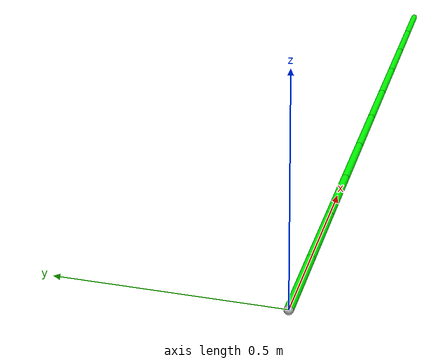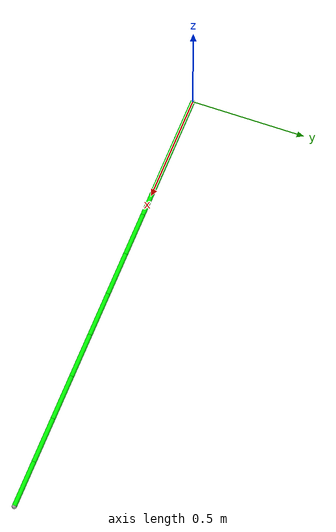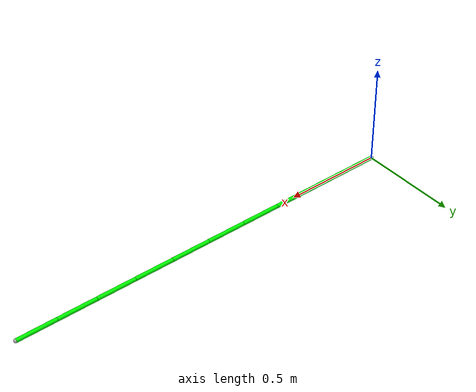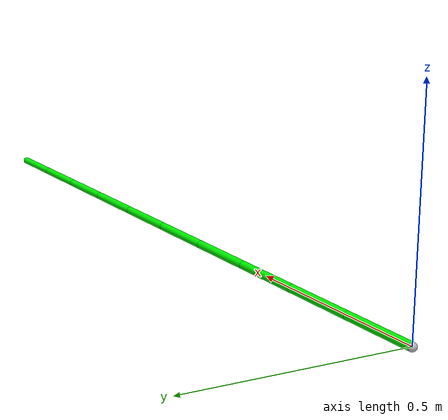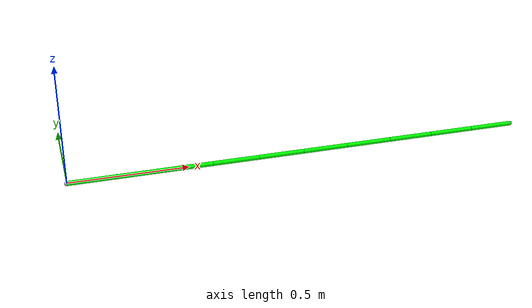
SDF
<?xml version="1.0" encoding="UTF-8"?>
<sdf version='1.9'>
  <model name='rope'>
    <enable_wind>true</enable_wind>
    <static>false</static>
    <link name='begin_link'>
      <pose>0 0 0 0 0 0</pose>
      <inertial>
        <mass>0.001</mass>
        <inertia>
          <ixx>4.000000000000001e-08</ixx>
          <iyy>4.000000000000001e-08</iyy>
          <izz>4.000000000000001e-08</izz>
        </inertia>
      </inertial>
       <collision name='begin_link_collision'>
        <geometry>
          <sphere>
            <radius>0.01</radius>
          </sphere>
        </geometry>
      </collision>
      <visual name='begin_link_visual'>
        <geometry>
          <sphere>
            <radius>0.01</radius>
          </sphere>
        </geometry>
      </visual>
    </link>
    <link name='link_0'>
      <pose>0.1 0 0 0 1.570796326794896558 0</pose>
      <inertial>
        <mass>0.001</mass>
        <inertia>
          <ixx>0.0003358333333333334</ixx>
          <iyy>0.0003358333333333334</iyy>
          <izz>5e-06</izz>
        </inertia>
      </inertial>
       <collision name='link_0_collision'>
        <geometry>
          <cylinder>
            <length>0.2</length>
            <radius>0.01</radius>
          </cylinder>
        </geometry>
      </collision>
      <visual name='link_0_vis'>
        <geometry>
          <cylinder>
            <length>0.2</length>
            <radius>0.01</radius>
          </cylinder>
        </geometry>
        <material>
          <ambient>0 1 0 1</ambient> <!-- green -->
          <diffuse>0 1 0 1</diffuse>
          <specular>0 1 0 1</specular>
        </material>
      </visual>
      <velocity_decay>
        <linear>0.1</linear>
        <angular>0.1</angular>
      </velocity_decay>

    </link>
    <joint name='begin_joint_2' type='universal'>
      <pose relative_to='begin_link'/>
      <child>link_0</child>
      <parent>begin_link</parent>
      <axis>
        <xyz>1 0 0</xyz>
      </axis>
      <axis2>
        <xyz>0 1 0</xyz>
      </axis2>
    </joint>

    <link name='link_1'>
      <pose>0.30000000000000004 0 0 0 1.570796326794896558 0</pose>
      <inertial>
        <mass>0.001</mass>
        <inertia>
          <ixx>0.0003358333333333334</ixx>
          <iyy>0.0003358333333333334</iyy>
          <izz>5e-06</izz>
        </inertia>
      </inertial>
       <collision name='link_1_collision'>
        <geometry>
          <cylinder>
            <length>0.2</length>
            <radius>0.01</radius>
          </cylinder>
        </geometry>
      </collision>
      <visual name='link_1_vis'>
        <geometry>
          <cylinder>
            <length>0.2</length>
            <radius>0.01</radius>
          </cylinder>
        </geometry>
        <material>
          <ambient>0 1 0 1</ambient> <!-- green -->
          <diffuse>0 1 0 1</diffuse>
          <specular>0 1 0 1</specular>
        </material>
      </visual>
      <velocity_decay>
        <linear>0.1</linear>
        <angular>0.1</angular>
      </velocity_decay>

    </link>
    <joint name='joint_1_2' type='universal'>
      <pose relative_to='link_0'>0 0 0.1 0 0 0</pose>
      <child>link_1</child>
      <parent>link_0</parent>
      <axis>
        <xyz expressed_in='link_0'>1 0 0</xyz>
        <limit>
          <lower>-3.141592653589793</lower>
          <upper>3.141592653589793</upper>
          <effort>100</effort>
          <velocity>10</velocity>
        </limit>
        <dynamics>
          <damping>0.1</damping>
        </dynamics>
      </axis>
      <axis2>
        <xyz expressed_in='link_0'>0 1 0</xyz>
        <limit>
          <lower>-3.141592653589793</lower>
          <upper>3.141592653589793</upper>
          <effort>100</effort>
          <velocity>10</velocity>
        </limit>
        <dynamics>
          <damping>0.1</damping>
        </dynamics>
      </axis2>
    </joint>
    <link name='link_2'>
      <pose>0.5 0 0 0 1.570796326794896558 0</pose>
      <inertial>
        <mass>0.001</mass>
        <inertia>
          <ixx>0.0003358333333333334</ixx>
          <iyy>0.0003358333333333334</iyy>
          <izz>5e-06</izz>
        </inertia>
      </inertial>
       <collision name='link_2_collision'>
        <geometry>
          <cylinder>
            <length>0.2</length>
            <radius>0.01</radius>
          </cylinder>
        </geometry>
      </collision>
      <visual name='link_2_vis'>
        <geometry>
          <cylinder>
            <length>0.2</length>
            <radius>0.01</radius>
          </cylinder>
        </geometry>
        <material>
          <ambient>0 1 0 1</ambient> <!-- green -->
          <diffuse>0 1 0 1</diffuse>
          <specular>0 1 0 1</specular>
        </material>
      </visual>
      <velocity_decay>
        <linear>0.1</linear>
        <angular>0.1</angular>
      </velocity_decay>

    </link>
    <joint name='joint_2_2' type='universal'>
      <pose relative_to='link_1'>0 0 0.1 0 0 0</pose>
      <child>link_2</child>
      <parent>link_1</parent>
      <axis>
        <xyz expressed_in='link_1'>1 0 0</xyz>
        <limit>
          <lower>-3.141592653589793</lower>
          <upper>3.141592653589793</upper>
          <effort>100</effort>
          <velocity>10</velocity>
        </limit>
        <dynamics>
          <damping>0.1</damping>
        </dynamics>
      </axis>
      <axis2>
        <xyz expressed_in='link_1'>0 1 0</xyz>
        <limit>
          <lower>-3.141592653589793</lower>
          <upper>3.141592653589793</upper>
          <effort>100</effort>
          <velocity>10</velocity>
        </limit>
        <dynamics>
          <damping>0.1</damping>
        </dynamics>
      </axis2>
    </joint>
    <link name='link_3'>
      <pose>0.7000000000000001 0 0 0 1.570796326794896558 0</pose>
      <inertial>
        <mass>0.001</mass>
        <inertia>
          <ixx>0.0003358333333333334</ixx>
          <iyy>0.0003358333333333334</iyy>
          <izz>5e-06</izz>
        </inertia>
      </inertial>
       <collision name='link_3_collision'>
        <geometry>
          <cylinder>
            <length>0.2</length>
            <radius>0.01</radius>
          </cylinder>
        </geometry>
      </collision>
      <visual name='link_3_vis'>
        <geometry>
          <cylinder>
            <length>0.2</length>
            <radius>0.01</radius>
          </cylinder>
        </geometry>
        <material>
          <ambient>0 1 0 1</ambient> <!-- green -->
          <diffuse>0 1 0 1</diffuse>
          <specular>0 1 0 1</specular>
        </material>
      </visual>
      <velocity_decay>
        <linear>0.1</linear>
        <angular>0.1</angular>
      </velocity_decay>

    </link>
    <joint name='joint_3_2' type='universal'>
      <pose relative_to='link_2'>0 0 0.1 0 0 0</pose>
      <child>link_3</child>
      <parent>link_2</parent>
      <axis>
        <xyz expressed_in='link_2'>1 0 0</xyz>
        <limit>
          <lower>-3.141592653589793</lower>
          <upper>3.141592653589793</upper>
          <effort>100</effort>
          <velocity>10</velocity>
        </limit>
        <dynamics>
          <damping>0.1</damping>
        </dynamics>
      </axis>
      <axis2>
        <xyz expressed_in='link_2'>0 1 0</xyz>
        <limit>
          <lower>-3.141592653589793</lower>
          <upper>3.141592653589793</upper>
          <effort>100</effort>
          <velocity>10</velocity>
        </limit>
        <dynamics>
          <damping>0.1</damping>
        </dynamics>
      </axis2>
    </joint>
    <link name='link_4'>
      <pose>0.9 0 0 0 1.570796326794896558 0</pose>
      <inertial>
        <mass>0.001</mass>
        <inertia>
          <ixx>0.0003358333333333334</ixx>
          <iyy>0.0003358333333333334</iyy>
          <izz>5e-06</izz>
        </inertia>
      </inertial>
       <collision name='link_4_collision'>
        <geometry>
          <cylinder>
            <length>0.2</length>
            <radius>0.01</radius>
          </cylinder>
        </geometry>
      </collision>
      <visual name='link_4_vis'>
        <geometry>
          <cylinder>
            <length>0.2</length>
            <radius>0.01</radius>
          </cylinder>
        </geometry>
        <material>
          <ambient>0 1 0 1</ambient> <!-- green -->
          <diffuse>0 1 0 1</diffuse>
          <specular>0 1 0 1</specular>
        </material>
      </visual>
      <velocity_decay>
        <linear>0.1</linear>
        <angular>0.1</angular>
      </velocity_decay>

    </link>
    <joint name='joint_4_2' type='universal'>
      <pose relative_to='link_3'>0 0 0.1 0 0 0</pose>
      <child>link_4</child>
      <parent>link_3</parent>
      <axis>
        <xyz expressed_in='link_3'>1 0 0</xyz>
        <limit>
          <lower>-3.141592653589793</lower>
          <upper>3.141592653589793</upper>
          <effort>100</effort>
          <velocity>10</velocity>
        </limit>
        <dynamics>
          <damping>0.1</damping>
        </dynamics>
      </axis>
      <axis2>
        <xyz expressed_in='link_3'>0 1 0</xyz>
        <limit>
          <lower>-3.141592653589793</lower>
          <upper>3.141592653589793</upper>
          <effort>100</effort>
          <velocity>10</velocity>
        </limit>
        <dynamics>
          <damping>0.1</damping>
        </dynamics>
      </axis2>
    </joint>
    <link name='link_5'>
      <pose>1.1 0 0 0 1.570796326794896558 0</pose>
      <inertial>
        <mass>0.001</mass>
        <inertia>
          <ixx>0.0003358333333333334</ixx>
          <iyy>0.0003358333333333334</iyy>
          <izz>5e-06</izz>
        </inertia>
      </inertial>
       <collision name='link_5_collision'>
        <geometry>
          <cylinder>
            <length>0.2</length>
            <radius>0.01</radius>
          </cylinder>
        </geometry>
      </collision>
      <visual name='link_5_vis'>
        <geometry>
          <cylinder>
            <length>0.2</length>
            <radius>0.01</radius>
          </cylinder>
        </geometry>
        <material>
          <ambient>0 1 0 1</ambient> <!-- green -->
          <diffuse>0 1 0 1</diffuse>
          <specular>0 1 0 1</specular>
        </material>
      </visual>
      <velocity_decay>
        <linear>0.1</linear>
        <angular>0.1</angular>
      </velocity_decay>

      <sensor name="imu_sensor" type="imu">
        <always_on>1</always_on>
        <update_rate>250</update_rate>
        <visualize>true</visualize>
      </sensor>
    </link>
    <joint name='joint_5_2' type='universal'>
      <pose relative_to='link_4'>0 0 0.1 0 0 0</pose>
      <child>link_5</child>
      <parent>link_4</parent>
      <axis>
        <xyz expressed_in='link_4'>1 0 0</xyz>
        <limit>
          <lower>-3.141592653589793</lower>
          <upper>3.141592653589793</upper>
          <effort>100</effort>
          <velocity>10</velocity>
        </limit>
        <dynamics>
          <damping>0.1</damping>
        </dynamics>
      </axis>
      <axis2>
        <xyz expressed_in='link_4'>0 1 0</xyz>
        <limit>
          <lower>-3.141592653589793</lower>
          <upper>3.141592653589793</upper>
          <effort>100</effort>
          <velocity>10</velocity>
        </limit>
        <dynamics>
          <damping>0.1</damping>
        </dynamics>
      </axis2>
    </joint>
    <link name='link_6'>
      <pose>1.3000000000000003 0 0 0 1.570796326794896558 0</pose>
      <inertial>
        <mass>0.001</mass>
        <inertia>
          <ixx>0.0003358333333333334</ixx>
          <iyy>0.0003358333333333334</iyy>
          <izz>5e-06</izz>
        </inertia>
      </inertial>
       <collision name='link_6_collision'>
        <geometry>
          <cylinder>
            <length>0.2</length>
            <radius>0.01</radius>
          </cylinder>
        </geometry>
      </collision>
      <visual name='link_6_vis'>
        <geometry>
          <cylinder>
            <length>0.2</length>
            <radius>0.01</radius>
          </cylinder>
        </geometry>
        <material>
          <ambient>0 1 0 1</ambient> <!-- green -->
          <diffuse>0 1 0 1</diffuse>
          <specular>0 1 0 1</specular>
        </material>
      </visual>
      <velocity_decay>
        <linear>0.1</linear>
        <angular>0.1</angular>
      </velocity_decay>

    </link>
    <joint name='joint_6_2' type='universal'>
      <pose relative_to='link_5'>0 0 0.1 0 0 0</pose>
      <child>link_6</child>
      <parent>link_5</parent>
      <axis>
        <xyz expressed_in='link_5'>1 0 0</xyz>
        <limit>
          <lower>-3.141592653589793</lower>
          <upper>3.141592653589793</upper>
          <effort>100</effort>
          <velocity>10</velocity>
        </limit>
        <dynamics>
          <damping>0.1</damping>
        </dynamics>
      </axis>
      <axis2>
        <xyz expressed_in='link_5'>0 1 0</xyz>
        <limit>
          <lower>-3.141592653589793</lower>
          <upper>3.141592653589793</upper>
          <effort>100</effort>
          <velocity>10</velocity>
        </limit>
        <dynamics>
          <damping>0.1</damping>
        </dynamics>
      </axis2>
    </joint>
    <link name='link_7'>
      <pose>1.5000000000000002 0 0 0 1.570796326794896558 0</pose>
      <inertial>
        <mass>0.001</mass>
        <inertia>
          <ixx>0.0003358333333333334</ixx>
          <iyy>0.0003358333333333334</iyy>
          <izz>5e-06</izz>
        </inertia>
      </inertial>
       <collision name='link_7_collision'>
        <geometry>
          <cylinder>
            <length>0.2</length>
            <radius>0.01</radius>
          </cylinder>
        </geometry>
      </collision>
      <visual name='link_7_vis'>
        <geometry>
          <cylinder>
            <length>0.2</length>
            <radius>0.01</radius>
          </cylinder>
        </geometry>
        <material>
          <ambient>0 1 0 1</ambient> <!-- green -->
          <diffuse>0 1 0 1</diffuse>
          <specular>0 1 0 1</specular>
        </material>
      </visual>
      <velocity_decay>
        <linear>0.1</linear>
        <angular>0.1</angular>
      </velocity_decay>

    </link>
    <joint name='joint_7_2' type='universal'>
      <pose relative_to='link_6'>0 0 0.1 0 0 0</pose>
      <child>link_7</child>
      <parent>link_6</parent>
      <axis>
        <xyz expressed_in='link_6'>1 0 0</xyz>
        <limit>
          <lower>-3.141592653589793</lower>
          <upper>3.141592653589793</upper>
          <effort>100</effort>
          <velocity>10</velocity>
        </limit>
        <dynamics>
          <damping>0.1</damping>
        </dynamics>
      </axis>
      <axis2>
        <xyz expressed_in='link_6'>0 1 0</xyz>
        <limit>
          <lower>-3.141592653589793</lower>
          <upper>3.141592653589793</upper>
          <effort>100</effort>
          <velocity>10</velocity>
        </limit>
        <dynamics>
          <damping>0.1</damping>
        </dynamics>
      </axis2>
    </joint>
    <link name='link_8'>
      <pose>1.7000000000000002 0 0 0 1.570796326794896558 0</pose>
      <inertial>
        <mass>0.001</mass>
        <inertia>
          <ixx>0.0003358333333333334</ixx>
          <iyy>0.0003358333333333334</iyy>
          <izz>5e-06</izz>
        </inertia>
      </inertial>
       <collision name='link_8_collision'>
        <geometry>
          <cylinder>
            <length>0.2</length>
            <radius>0.01</radius>
          </cylinder>
        </geometry>
      </collision>
      <visual name='link_8_vis'>
        <geometry>
          <cylinder>
            <length>0.2</length>
            <radius>0.01</radius>
          </cylinder>
        </geometry>
        <material>
          <ambient>0 1 0 1</ambient> <!-- green -->
          <diffuse>0 1 0 1</diffuse>
          <specular>0 1 0 1</specular>
        </material>
      </visual>
      <velocity_decay>
        <linear>0.1</linear>
        <angular>0.1</angular>
      </velocity_decay>

    </link>
    <joint name='joint_8_2' type='universal'>
      <pose relative_to='link_7'>0 0 0.1 0 0 0</pose>
      <child>link_8</child>
      <parent>link_7</parent>
      <axis>
        <xyz expressed_in='link_7'>1 0 0</xyz>
        <limit>
          <lower>-3.141592653589793</lower>
          <upper>3.141592653589793</upper>
          <effort>100</effort>
          <velocity>10</velocity>
        </limit>
        <dynamics>
          <damping>0.1</damping>
        </dynamics>
      </axis>
      <axis2>
        <xyz expressed_in='link_7'>0 1 0</xyz>
        <limit>
          <lower>-3.141592653589793</lower>
          <upper>3.141592653589793</upper>
          <effort>100</effort>
          <velocity>10</velocity>
        </limit>
        <dynamics>
          <damping>0.1</damping>
        </dynamics>
      </axis2>
    </joint>
    <link name='link_9'>
      <pose>1.9000000000000001 0 0 0 1.570796326794896558 0</pose>
      <inertial>
        <mass>0.001</mass>
        <inertia>
          <ixx>0.0003358333333333334</ixx>
          <iyy>0.0003358333333333334</iyy>
          <izz>5e-06</izz>
        </inertia>
      </inertial>
       <collision name='link_9_collision'>
        <geometry>
          <cylinder>
            <length>0.2</length>
            <radius>0.01</radius>
          </cylinder>
        </geometry>
      </collision>
      <visual name='link_9_vis'>
        <geometry>
          <cylinder>
            <length>0.2</length>
            <radius>0.01</radius>
          </cylinder>
        </geometry>
        <material>
          <ambient>0 1 0 1</ambient> <!-- green -->
          <diffuse>0 1 0 1</diffuse>
          <specular>0 1 0 1</specular>
        </material>
      </visual>
      <velocity_decay>
        <linear>0.1</linear>
        <angular>0.1</angular>
      </velocity_decay>

    </link>
    <joint name='joint_9_2' type='universal'>
      <pose relative_to='link_8'>0 0 0.1 0 0 0</pose>
      <child>link_9</child>
      <parent>link_8</parent>
      <axis>
        <xyz expressed_in='link_8'>1 0 0</xyz>
        <limit>
          <lower>-3.141592653589793</lower>
          <upper>3.141592653589793</upper>
          <effort>100</effort>
          <velocity>10</velocity>
        </limit>
        <dynamics>
          <damping>0.1</damping>
        </dynamics>
      </axis>
      <axis2>
        <xyz expressed_in='link_8'>0 1 0</xyz>
        <limit>
          <lower>-3.141592653589793</lower>
          <upper>3.141592653589793</upper>
          <effort>100</effort>
          <velocity>10</velocity>
        </limit>
        <dynamics>
          <damping>0.1</damping>
        </dynamics>
      </axis2>
    </joint>
    <link name='end_link'>
      <pose>2 0 0 0 0 0</pose>
      <inertial>
        <mass>0.001</mass>
        <inertia>
          <ixx>4.000000000000001e-08</ixx>
          <iyy>4.000000000000001e-08</iyy>
          <izz>4.000000000000001e-08</izz>
        </inertia>
      </inertial>
       <collision name='end_link_collision'>
        <geometry>
          <sphere>
            <radius>0.01</radius>
          </sphere>
        </geometry>
      </collision>
      <visual name='end_link_visual'>
        <geometry>
          <sphere>
            <radius>0.01</radius>
          </sphere>
        </geometry>
      </visual>
    </link>
    <joint name='joint_end_1' type='universal'>
      <pose relative_to='end_link'/>
      <child>end_link</child>
      <parent>link_9</parent>
      <axis>
        <xyz>0 0 1</xyz>
      </axis>
      <axis2>
        <xyz>0 1 0</xyz>
      </axis2>
    </joint>
  </model>
</sdf>
